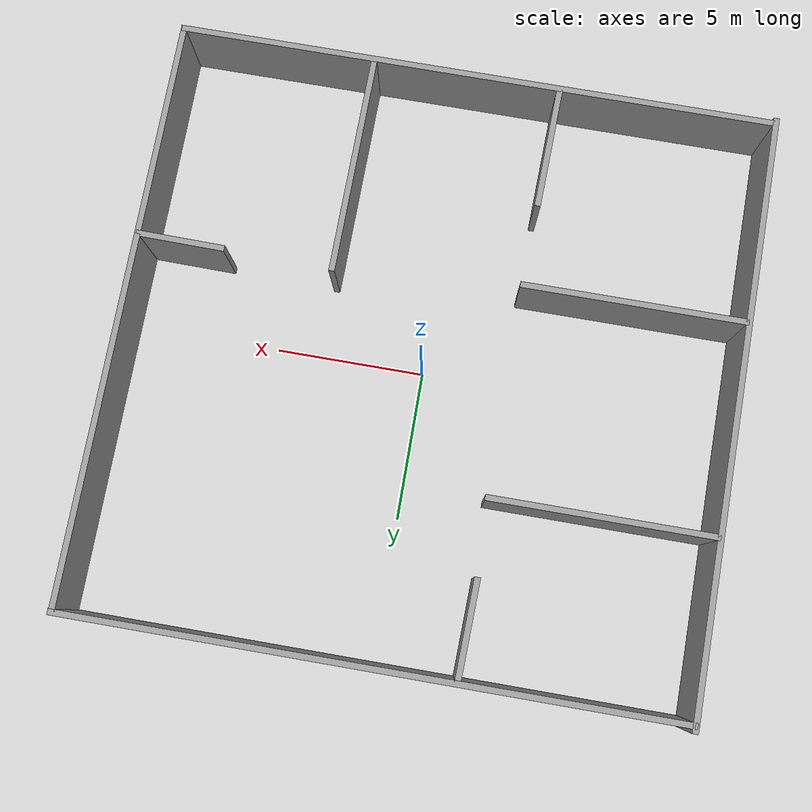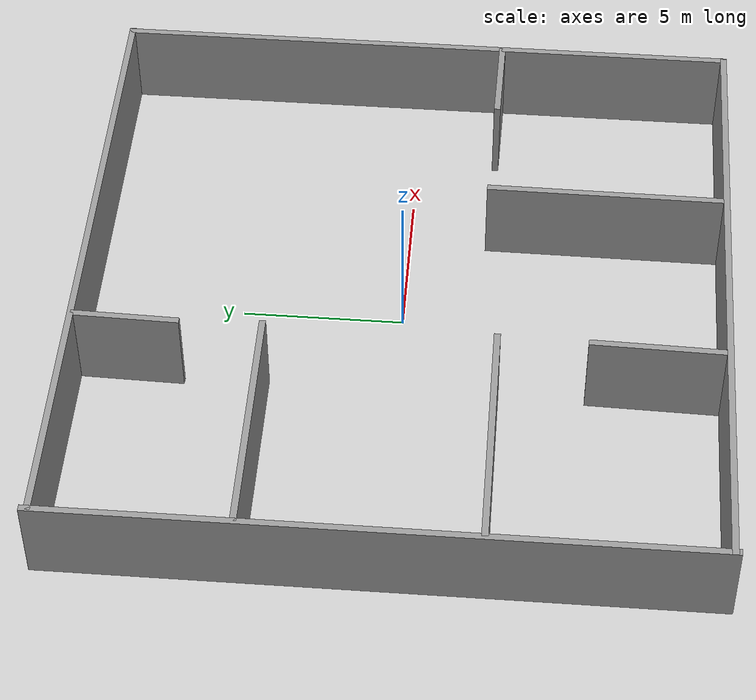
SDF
<sdf version="1.6">
 <world name="default">
  <light name="sun" type="directional">
   <pose>0 0 10 0 -0 0</pose>
   <diffuse>0.8 0.8 0.8 1</diffuse>
   <specular>0.2 0.2 0.2 1</specular>
   <attenuation>
    <range>1000</range>
    <constant>0.9</constant>
    <linear>0.01</linear>
    <quadratic>0.001</quadratic>
   </attenuation>
   <direction>-0.5 0.1 -0.9</direction>
  </light>
  <model name="ground_plane">
   <static>1</static>
   <link name="link">
    <collision name="collision">
     <geometry><plane><normal>0 0 1</normal><size>100 100</size></plane></geometry>
     <surface>
      <contact><collide_bitmask>65535</collide_bitmask></contact>
      <friction><ode><mu>100</mu><mu2>50</mu2></ode></friction>
     </surface>
    </collision>
    <visual name="visual">
     <cast_shadows>0</cast_shadows>
     <geometry><plane><normal>0 0 1</normal><size>100 100</size></plane></geometry>
     <material>
      <script><uri>file://media/materials/scripts/gazebo.material</uri><name>Gazebo/Grey</name></script>
     </material>
    </visual>
   </link>
  </model>
  <gravity>0 0 -9.8</gravity>
  <magnetic_field>6e-06 2.3e-05 -4.2e-05</magnetic_field>
  <atmosphere type="adiabatic"/>
  <physics name="default_physics" default="0" type="ode">
   <max_step_size>0.001</max_step_size>
   <real_time_factor>1</real_time_factor>
   <real_time_update_rate>1000</real_time_update_rate>
  </physics>
  <scene><ambient>0.4 0.4 0.4 1</ambient><background>0.7 0.7 0.7 1</background><shadows>1</shadows></scene>
  <audio><device>default</device></audio>
  <spherical_coordinates>
   <surface_model>EARTH_WGS84</surface_model>
   <latitude_deg>0</latitude_deg>
   <longitude_deg>0</longitude_deg>
   <elevation>0</elevation>
   <heading_deg>0</heading_deg>
  </spherical_coordinates>
  <model name="grey_wall">
   <link name="link">
    <pose>0 8.08272 1.4 0 -0 0</pose>
    <inertial>
     <inertia><ixx>0</ixx><ixy>0</ixy><ixz>0</ixz><iyy>0</iyy><iyz>0</iyz><izz>0</izz></inertia>
     <mass>0</mass>
    </inertial>
    <visual name="visual">
     <cast_shadows>0</cast_shadows>
     <geometry><box><size>20.3383 0.2 2.8</size></box></geometry>
     <material>
      <script>
       <uri>model://grey_wall/materials/scripts</uri>
       <uri>model://grey_wall/materials/textures</uri>
       <name>vrc/grey_wall</name>
      </script>
      <shader type="vertex"><normal_map>__default__</normal_map></shader>
     </material>
    </visual>
    <collision name="collision">
     <geometry><box><size>20.3383 0.2 2.8</size></box></geometry>
     <surface>
      <friction>
       <ode><mu>1</mu><mu2>1</mu2><fdir1>0 0 0</fdir1><slip1>0</slip1><slip2>0</slip2></ode>
       <torsional>
        <coefficient>1</coefficient>
        <patch_radius>0</patch_radius>
        <surface_radius>0</surface_radius>
        <use_patch_radius>1</use_patch_radius>
        <ode><slip>0</slip></ode>
       </torsional>
      </friction>
      <bounce><restitution_coefficient>0</restitution_coefficient><threshold>1e+06</threshold></bounce>
      <contact>
       <collide_without_contact>0</collide_without_contact>
       <collide_without_contact_bitmask>1</collide_without_contact_bitmask>
       <collide_bitmask>1</collide_bitmask>
       <ode>
        <soft_cfm>0</soft_cfm>
        <soft_erp>0.2</soft_erp>
        <kp>1e+13</kp>
        <kd>1</kd>
        <max_vel>0.01</max_vel>
        <min_depth>0</min_depth>
       </ode>
       <bullet>
        <split_impulse>1</split_impulse>
        <split_impulse_penetration_threshold>-0.01</split_impulse_penetration_threshold>
        <soft_cfm>0</soft_cfm>
        <soft_erp>0.2</soft_erp>
        <kp>1e+13</kp>
        <kd>1</kd>
       </bullet>
      </contact>
     </surface>
    </collision>
   </link>
   <link name="link_clone">
    <pose>-0.129516 -11.6564 1.4 0 -0 0</pose>
    <inertial>
     <inertia><ixx>0</ixx><ixy>0</ixy><ixz>0</ixz><iyy>0</iyy><iyz>0</iyz><izz>0</izz></inertia>
     <mass>0</mass>
    </inertial>
    <visual name="visual">
     <cast_shadows>0</cast_shadows>
     <geometry><box><size>20.3383 0.2 2.8</size></box></geometry>
     <material>
      <script>
       <uri>model://grey_wall/materials/scripts</uri>
       <uri>model://grey_wall/materials/textures</uri>
       <name>vrc/grey_wall</name>
      </script>
      <shader type="vertex"><normal_map>__default__</normal_map></shader>
     </material>
    </visual>
    <collision name="collision">
     <geometry><box><size>20.3383 0.2 2.8</size></box></geometry>
     <surface>
      <friction>
       <ode><mu>1</mu><mu2>1</mu2><fdir1>0 0 0</fdir1><slip1>0</slip1><slip2>0</slip2></ode>
       <torsional>
        <coefficient>1</coefficient>
        <patch_radius>0</patch_radius>
        <surface_radius>0</surface_radius>
        <use_patch_radius>1</use_patch_radius>
        <ode><slip>0</slip></ode>
       </torsional>
      </friction>
      <bounce><restitution_coefficient>0</restitution_coefficient><threshold>1e+06</threshold></bounce>
      <contact>
       <collide_without_contact>0</collide_without_contact>
       <collide_without_contact_bitmask>1</collide_without_contact_bitmask>
       <collide_bitmask>1</collide_bitmask>
       <ode>
        <soft_cfm>0</soft_cfm>
        <soft_erp>0.2</soft_erp>
        <kp>1e+13</kp>
        <kd>1</kd>
        <max_vel>0.01</max_vel>
        <min_depth>0</min_depth>
       </ode>
       <bullet>
        <split_impulse>1</split_impulse>
        <split_impulse_penetration_threshold>-0.01</split_impulse_penetration_threshold>
        <soft_cfm>0</soft_cfm>
        <soft_erp>0.2</soft_erp>
        <kp>1e+13</kp>
        <kd>1</kd>
       </bullet>
      </contact>
     </surface>
    </collision>
   </link>
   <link name="link_clone_clone">
    <pose>-10.1581 -1.76202 1.4 0 0 -1.57511</pose>
    <inertial>
     <inertia><ixx>0</ixx><ixy>0</ixy><ixz>0</ixz><iyy>0</iyy><iyz>0</iyz><izz>0</izz></inertia>
     <mass>0</mass>
    </inertial>
    <visual name="visual">
     <cast_shadows>0</cast_shadows>
     <geometry><box><size>20.1678 0.2 2.8</size></box></geometry>
     <material>
      <script>
       <uri>model://grey_wall/materials/scripts</uri>
       <uri>model://grey_wall/materials/textures</uri>
       <name>vrc/grey_wall</name>
      </script>
      <shader type="vertex"><normal_map>__default__</normal_map></shader>
     </material>
    </visual>
    <collision name="collision">
     <geometry><box><size>20.1678 0.2 2.8</size></box></geometry>
     <surface>
      <friction>
       <ode><mu>1</mu><mu2>1</mu2><fdir1>0 0 0</fdir1><slip1>0</slip1><slip2>0</slip2></ode>
       <torsional>
        <coefficient>1</coefficient>
        <patch_radius>0</patch_radius>
        <surface_radius>0</surface_radius>
        <use_patch_radius>1</use_patch_radius>
        <ode><slip>0</slip></ode>
       </torsional>
      </friction>
      <bounce><restitution_coefficient>0</restitution_coefficient><threshold>1e+06</threshold></bounce>
      <contact>
       <collide_without_contact>0</collide_without_contact>
       <collide_without_contact_bitmask>1</collide_without_contact_bitmask>
       <collide_bitmask>1</collide_bitmask>
       <ode>
        <soft_cfm>0</soft_cfm>
        <soft_erp>0.2</soft_erp>
        <kp>1e+13</kp>
        <kd>1</kd>
        <max_vel>0.01</max_vel>
        <min_depth>0</min_depth>
       </ode>
       <bullet>
        <split_impulse>1</split_impulse>
        <split_impulse_penetration_threshold>-0.01</split_impulse_penetration_threshold>
        <soft_cfm>0</soft_cfm>
        <soft_erp>0.2</soft_erp>
        <kp>1e+13</kp>
        <kd>1</kd>
       </bullet>
      </contact>
     </surface>
    </collision>
   </link>
   <link name="link_clone_clone_clone">
    <pose>10.0113 -1.78772 1.4 0 0 -1.57511</pose>
    <inertial>
     <inertia><ixx>0</ixx><ixy>0</ixy><ixz>0</ixz><iyy>0</iyy><iyz>0</iyz><izz>0</izz></inertia>
     <mass>0</mass>
    </inertial>
    <visual name="visual">
     <cast_shadows>0</cast_shadows>
     <geometry><box><size>19.9326 0.2 2.8</size></box></geometry>
     <material>
      <script>
       <uri>model://grey_wall/materials/scripts</uri>
       <uri>model://grey_wall/materials/textures</uri>
       <name>vrc/grey_wall</name>
      </script>
      <shader type="vertex"><normal_map>__default__</normal_map></shader>
     </material>
    </visual>
    <collision name="collision">
     <geometry><box><size>19.9326 0.2 2.8</size></box></geometry>
     <surface>
      <friction>
       <ode><mu>1</mu><mu2>1</mu2><fdir1>0 0 0</fdir1><slip1>0</slip1><slip2>0</slip2></ode>
       <torsional>
        <coefficient>1</coefficient>
        <patch_radius>0</patch_radius>
        <surface_radius>0</surface_radius>
        <use_patch_radius>1</use_patch_radius>
        <ode><slip>0</slip></ode>
       </torsional>
      </friction>
      <bounce><restitution_coefficient>0</restitution_coefficient><threshold>1e+06</threshold></bounce>
      <contact>
       <collide_without_contact>0</collide_without_contact>
       <collide_without_contact_bitmask>1</collide_without_contact_bitmask>
       <collide_bitmask>1</collide_bitmask>
       <ode>
        <soft_cfm>0</soft_cfm>
        <soft_erp>0.2</soft_erp>
        <kp>1e+13</kp>
        <kd>1</kd>
        <max_vel>0.01</max_vel>
        <min_depth>0</min_depth>
       </ode>
       <bullet>
        <split_impulse>1</split_impulse>
        <split_impulse_penetration_threshold>-0.01</split_impulse_penetration_threshold>
        <soft_cfm>0</soft_cfm>
        <soft_erp>0.2</soft_erp>
        <kp>1e+13</kp>
        <kd>1</kd>
       </bullet>
      </contact>
     </surface>
    </collision>
   </link>
   <static>1</static>
   <pose>-0.074296 1.73741 0 0 -0 0</pose>
  </model>
  <model name="grey_wall_0">
   <static>1</static>
   <link name="link">
    <pose>0 0 1.4 0 -0 0</pose>
    <collision name="collision"><geometry><box><size>7.5 0.2 2.8</size></box></geometry></collision>
    <visual name="visual">
     <cast_shadows>0</cast_shadows>
     <geometry><box><size>7.5 0.2 2.8</size></box></geometry>
     <material>
      <script>
       <uri>model://grey_wall/materials/scripts</uri>
       <uri>model://grey_wall/materials/textures</uri>
       <name>vrc/grey_wall</name>
      </script>
     </material>
    </visual>
   </link>
   <pose>-6.48156 -3.00669 0 0 -0 0</pose>
  </model>
  <model name="grey_wall_1">
   <link name="link">
    <pose>1.63905 0.149188 1.4 0 -0 0</pose>
    <inertial>
     <inertia><ixx>0</ixx><ixy>0</ixy><ixz>0</ixz><iyy>0</iyy><iyz>0</iyz><izz>0</izz></inertia>
     <mass>0</mass>
    </inertial>
    <visual name="visual">
     <cast_shadows>0</cast_shadows>
     <geometry><box><size>4.14156 0.2 2.8</size></box></geometry>
     <material>
      <script>
       <uri>model://grey_wall/materials/scripts</uri>
       <uri>model://grey_wall/materials/textures</uri>
       <name>vrc/grey_wall</name>
      </script>
     </material>
    </visual>
    <collision name="collision">
     <geometry><box><size>4.14156 0.2 2.8</size></box></geometry>
     <surface>
      <friction>
       <ode><mu>1</mu><mu2>1</mu2><fdir1>0 0 0</fdir1><slip1>0</slip1><slip2>0</slip2></ode>
       <torsional>
        <coefficient>1</coefficient>
        <patch_radius>0</patch_radius>
        <surface_radius>0</surface_radius>
        <use_patch_radius>1</use_patch_radius>
        <ode><slip>0</slip></ode>
       </torsional>
      </friction>
      <bounce><restitution_coefficient>0</restitution_coefficient><threshold>1e+06</threshold></bounce>
      <contact>
       <collide_without_contact>0</collide_without_contact>
       <collide_without_contact_bitmask>1</collide_without_contact_bitmask>
       <collide_bitmask>1</collide_bitmask>
       <ode>
        <soft_cfm>0</soft_cfm>
        <soft_erp>0.2</soft_erp>
        <kp>1e+13</kp>
        <kd>1</kd>
        <max_vel>0.01</max_vel>
        <min_depth>0</min_depth>
       </ode>
       <bullet>
        <split_impulse>1</split_impulse>
        <split_impulse_penetration_threshold>-0.01</split_impulse_penetration_threshold>
        <soft_cfm>0</soft_cfm>
        <soft_erp>0.2</soft_erp>
        <kp>1e+13</kp>
        <kd>1</kd>
       </bullet>
      </contact>
     </surface>
    </collision>
   </link>
   <static>1</static>
   <pose>-3.03013 -6.1608 0 0 0 -1.59881</pose>
  </model>
  <model name="grey_wall_0_clone">
   <static>1</static>
   <link name="link">
    <pose>0 0 1.4 0 -0 0</pose>
    <collision name="collision"><geometry><box><size>7.5 0.2 2.8</size></box></geometry></collision>
    <visual name="visual">
     <cast_shadows>0</cast_shadows>
     <geometry><box><size>7.5 0.2 2.8</size></box></geometry>
     <material>
      <script>
       <uri>model://grey_wall/materials/scripts</uri>
       <uri>model://grey_wall/materials/textures</uri>
       <name>vrc/grey_wall</name>
      </script>
     </material>
    </visual>
   </link>
   <pose>-6.46599 4.02348 0 0 -0 0</pose>
  </model>
  <model name="grey_wall_1_clone">
   <link name="link">
    <pose>1.16822 0.149188 1.4 0 -0 0</pose>
    <inertial>
     <inertia><ixx>0</ixx><ixy>0</ixy><ixz>0</ixz><iyy>0</iyy><iyz>0</iyz><izz>0</izz></inertia>
     <mass>0</mass>
    </inertial>
    <visual name="visual">
     <cast_shadows>0</cast_shadows>
     <geometry><box><size>3.29533 0.2 2.8</size></box></geometry>
     <material>
      <script>
       <uri>model://grey_wall/materials/scripts</uri>
       <uri>model://grey_wall/materials/textures</uri>
       <name>vrc/grey_wall</name>
      </script>
     </material>
    </visual>
    <collision name="collision">
     <geometry><box><size>3.29533 0.2 2.8</size></box></geometry>
     <surface>
      <friction>
       <ode><mu>1</mu><mu2>1</mu2><fdir1>0 0 0</fdir1><slip1>0</slip1><slip2>0</slip2></ode>
       <torsional>
        <coefficient>1</coefficient>
        <patch_radius>0</patch_radius>
        <surface_radius>0</surface_radius>
        <use_patch_radius>1</use_patch_radius>
        <ode><slip>0</slip></ode>
       </torsional>
      </friction>
      <bounce><restitution_coefficient>0</restitution_coefficient><threshold>1e+06</threshold></bounce>
      <contact>
       <collide_without_contact>0</collide_without_contact>
       <collide_without_contact_bitmask>1</collide_without_contact_bitmask>
       <collide_bitmask>1</collide_bitmask>
       <ode>
        <soft_cfm>0</soft_cfm>
        <soft_erp>0.2</soft_erp>
        <kp>1e+13</kp>
        <kd>1</kd>
        <max_vel>0.01</max_vel>
        <min_depth>0</min_depth>
       </ode>
       <bullet>
        <split_impulse>1</split_impulse>
        <split_impulse_penetration_threshold>-0.01</split_impulse_penetration_threshold>
        <soft_cfm>0</soft_cfm>
        <soft_erp>0.2</soft_erp>
        <kp>1e+13</kp>
        <kd>1</kd>
       </bullet>
      </contact>
     </surface>
    </collision>
   </link>
   <static>1</static>
   <pose>-2.95912 9.33969 0 0 0 -1.59881</pose>
  </model>
  <model name="grey_wall_0_clone_0">
   <static>1</static>
   <link name="link">
    <pose>0 0 1.4 0 -0 0</pose>
    <collision name="collision"><geometry><box><size>7.5 0.2 2.8</size></box></geometry></collision>
    <visual name="visual">
     <cast_shadows>0</cast_shadows>
     <geometry><box><size>7.5 0.2 2.8</size></box></geometry>
     <material>
      <script>
       <uri>model://grey_wall/materials/scripts</uri>
       <uri>model://grey_wall/materials/textures</uri>
       <name>vrc/grey_wall</name>
      </script>
     </material>
    </visual>
   </link>
   <pose>3.37539 -6.15596 0 0 0 -1.58181</pose>
  </model>
  <model name="grey_wall_1_clone_0">
   <link name="link">
    <pose>1.07503 0.149188 1.4 0 -0 0</pose>
    <inertial>
     <inertia><ixx>0</ixx><ixy>0</ixy><ixz>0</ixz><iyy>0</iyy><iyz>0</iyz><izz>0</izz></inertia>
     <mass>0</mass>
    </inertial>
    <visual name="visual">
     <cast_shadows>0</cast_shadows>
     <geometry><box><size>2.96308 0.2 2.8</size></box></geometry>
     <material>
      <script>
       <uri>model://grey_wall/materials/scripts</uri>
       <uri>model://grey_wall/materials/textures</uri>
       <name>vrc/grey_wall</name>
      </script>
     </material>
    </visual>
    <collision name="collision">
     <geometry><box><size>2.96308 0.2 2.8</size></box></geometry>
     <surface>
      <friction>
       <ode><mu>1</mu><mu2>1</mu2><fdir1>0 0 0</fdir1><slip1>0</slip1><slip2>0</slip2></ode>
       <torsional>
        <coefficient>1</coefficient>
        <patch_radius>0</patch_radius>
        <surface_radius>0</surface_radius>
        <use_patch_radius>1</use_patch_radius>
        <ode><slip>0</slip></ode>
       </torsional>
      </friction>
      <bounce><restitution_coefficient>0</restitution_coefficient><threshold>1e+06</threshold></bounce>
      <contact>
       <collide_without_contact>0</collide_without_contact>
       <collide_without_contact_bitmask>1</collide_without_contact_bitmask>
       <collide_bitmask>1</collide_bitmask>
       <ode>
        <soft_cfm>0</soft_cfm>
        <soft_erp>0.2</soft_erp>
        <kp>1e+13</kp>
        <kd>1</kd>
        <max_vel>0.01</max_vel>
        <min_depth>0</min_depth>
       </ode>
       <bullet>
        <split_impulse>1</split_impulse>
        <split_impulse_penetration_threshold>-0.01</split_impulse_penetration_threshold>
        <soft_cfm>0</soft_cfm>
        <soft_erp>0.2</soft_erp>
        <kp>1e+13</kp>
        <kd>1</kd>
       </bullet>
      </contact>
     </surface>
    </collision>
   </link>
   <static>1</static>
   <pose>9.57244 -2.43901 -0 0 -0 3.12799</pose>
  </model>
 </world>
</sdf>
